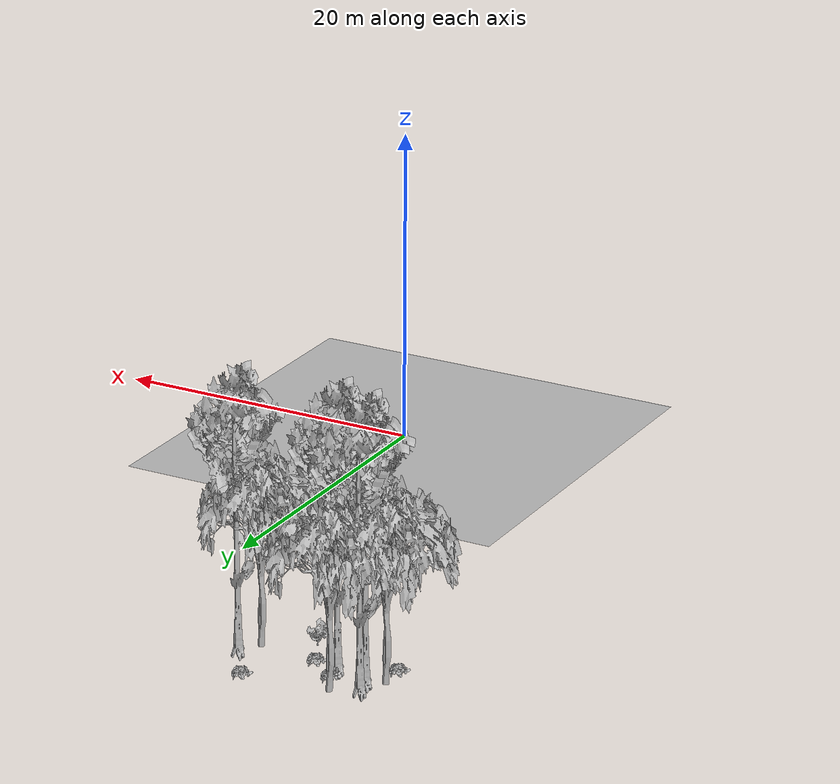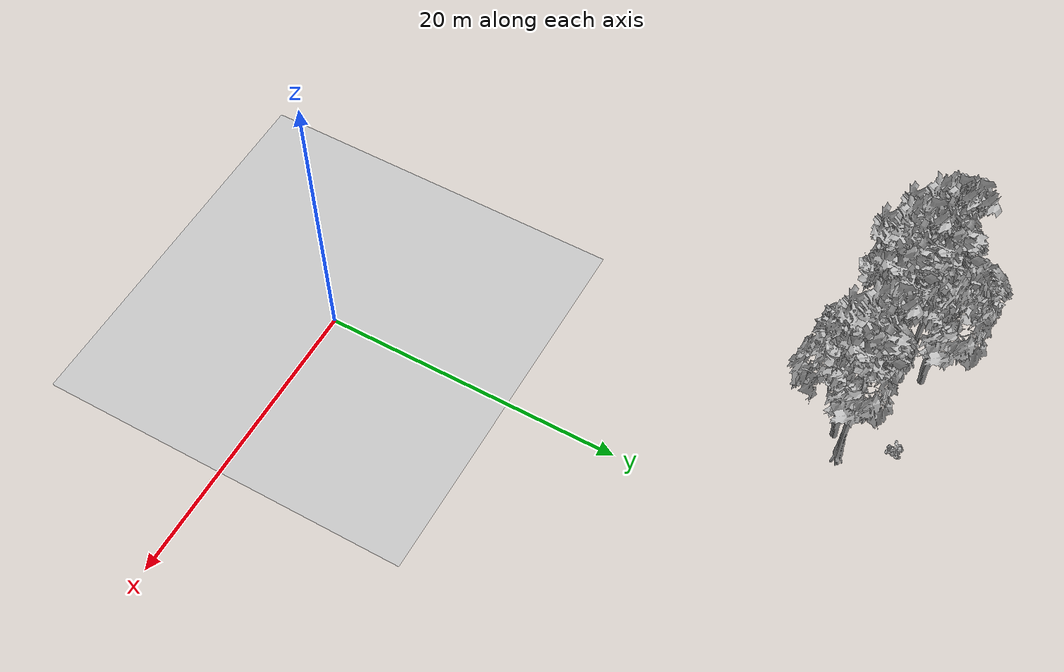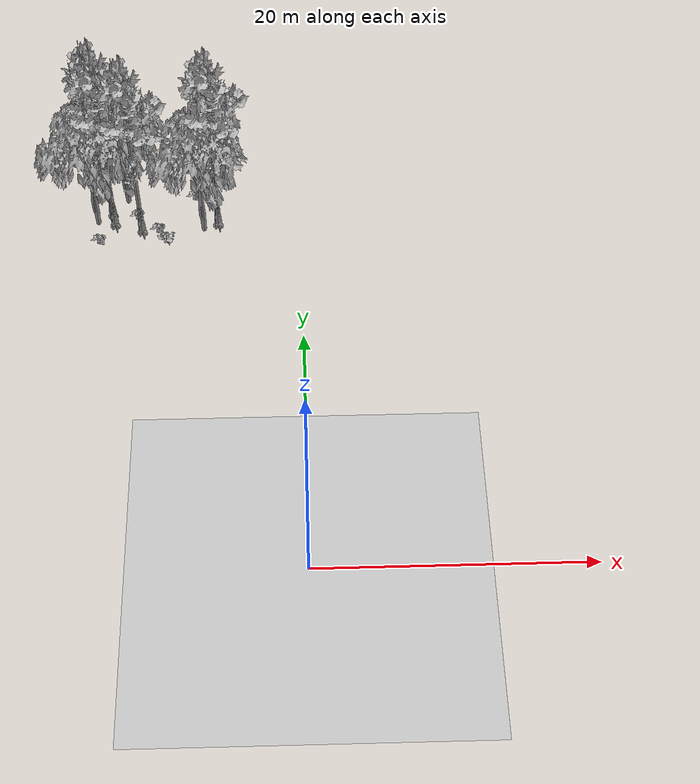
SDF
<sdf version="1.7">
 <world name="default">
  <model name="ground_plane">
   <static>1</static>
   <link name="link">
    <collision name="collision">
     <pose>-50 0 0 0 -0 0</pose>
     <geometry><plane><normal>0 0 1</normal><size>80 80</size></plane></geometry>
     <surface><contact><ode><min_depth>0.01</min_depth><max_vel>0</max_vel></ode></contact></surface>
    </collision>
    <visual name="grass">
     <cast_shadows>0</cast_shadows>
     <geometry>
      <mesh>
       <scale>0.46714285714285714 0.46714285714285714 0.1</scale>
       <uri>file://grass_plane/meshes/grass_plane.dae</uri>
      </mesh>
     </geometry>
    </visual>
   </link>
  </model>
  <model name="Tree 146">
   <static>1</static>
   <pose>-14.961076138893592 31.85427022478686 0 1.57079 -0 0</pose>
   <link name="link">
    <collision name="collision">
     <geometry><mesh><scale>3.5 5 3.5</scale><uri>model://tree_9/meshes/tree_9.obj</uri></mesh></geometry>
    </collision>
    <visual name="visual">
     <geometry><mesh><scale>3.5 5 3.5</scale><uri>model://tree_9/meshes/tree_9.obj</uri></mesh></geometry>
    </visual>
   </link>
  </model>
  <model name="Tree 205">
   <static>1</static>
   <pose>-6.693130029296043 31.7092680126446 0 1.57079 -0 0</pose>
   <link name="link">
    <collision name="collision">
     <geometry><mesh><scale>3.5 5 3.5</scale><uri>model://tree_9/meshes/tree_9.obj</uri></mesh></geometry>
    </collision>
    <visual name="visual">
     <geometry><mesh><scale>3.5 5 3.5</scale><uri>model://tree_9/meshes/tree_9.obj</uri></mesh></geometry>
    </visual>
   </link>
  </model>
  <model name="Tree 332">
   <static>1</static>
   <pose>-14.061984903483644 34.10177113755012 0 1.57079 -0 0</pose>
   <link name="link">
    <collision name="collision">
     <geometry><mesh><scale>3.5 5 3.5</scale><uri>model://tree_2/meshes/tree_2.obj</uri></mesh></geometry>
    </collision>
    <visual name="visual">
     <geometry><mesh><scale>3.5 5 3.5</scale><uri>model://tree_2/meshes/tree_2.obj</uri></mesh></geometry>
    </visual>
   </link>
  </model>
  <model name="Tree 368">
   <static>1</static>
   <pose>-16.33912244209458 31.804862480765877 0 1.57079 -0 0</pose>
   <link name="link">
    <collision name="collision">
     <geometry><mesh><scale>3.5 5 3.5</scale><uri>model://tree_2/meshes/tree_2.obj</uri></mesh></geometry>
    </collision>
    <visual name="visual">
     <geometry><mesh><scale>3.5 5 3.5</scale><uri>model://tree_2/meshes/tree_2.obj</uri></mesh></geometry>
    </visual>
   </link>
  </model>
  <model name="Tree 448">
   <static>1</static>
   <pose>-7.870499715416056 30.929971764070316 0 1.57079 -0 0</pose>
   <link name="link">
    <collision name="collision">
     <geometry><mesh><scale>3.5 5 3.5</scale><uri>model://tree_2/meshes/tree_2.obj</uri></mesh></geometry>
    </collision>
    <visual name="visual">
     <geometry><mesh><scale>3.5 5 3.5</scale><uri>model://tree_2/meshes/tree_2.obj</uri></mesh></geometry>
    </visual>
   </link>
  </model>
  <model name="Tree 454">
   <static>1</static>
   <pose>-12.755983272720538 31.090131524891007 0 1.57079 -0 0</pose>
   <link name="link">
    <collision name="collision">
     <geometry><mesh><scale>3.5 5 3.5</scale><uri>model://tree_9/meshes/tree_9.obj</uri></mesh></geometry>
    </collision>
    <visual name="visual">
     <geometry><mesh><scale>3.5 5 3.5</scale><uri>model://tree_9/meshes/tree_9.obj</uri></mesh></geometry>
    </visual>
   </link>
  </model>
  <model name="Tree 466">
   <static>1</static>
   <pose>-15.190442848679577 32.90170732839873 0 1.57079 -0 0</pose>
   <link name="link">
    <collision name="collision">
     <geometry><mesh><scale>3.5 5 3.5</scale><uri>model://tree_9/meshes/tree_9.obj</uri></mesh></geometry>
    </collision>
    <visual name="visual">
     <geometry><mesh><scale>3.5 5 3.5</scale><uri>model://tree_9/meshes/tree_9.obj</uri></mesh></geometry>
    </visual>
   </link>
  </model>
  <model name="Bush 6">
   <static>1</static>
   <pose>-13.183257065494967 32.5680396946736 0 1.57079 -0 0</pose>
   <link name="link">
    <collision name="collision">
     <geometry><mesh><scale>2 2 2</scale><uri>model://bush_2/meshes/bush_2.obj</uri></mesh></geometry>
     <surface><contact><collide_without_contact>false</collide_without_contact></contact></surface>
    </collision>
    <visual name="visual">
     <geometry><mesh><scale>2 2 2</scale><uri>model://bush_2/meshes/bush_2.obj</uri></mesh></geometry>
    </visual>
   </link>
  </model>
  <model name="Bush 64">
   <static>1</static>
   <pose>-8.657688561409628 34.58454920156099 0 1.57079 -0 0</pose>
   <link name="link">
    <collision name="collision">
     <geometry><mesh><scale>2 2 2</scale><uri>model://bush_2/meshes/bush_2.obj</uri></mesh></geometry>
     <surface><contact><collide_without_contact>false</collide_without_contact></contact></surface>
    </collision>
    <visual name="visual">
     <geometry><mesh><scale>2 2 2</scale><uri>model://bush_2/meshes/bush_2.obj</uri></mesh></geometry>
    </visual>
   </link>
  </model>
  <model name="Bush 119">
   <static>1</static>
   <pose>-16.131569324287923 30.060481044743412 0 1.57079 -0 0</pose>
   <link name="link">
    <collision name="collision">
     <geometry><mesh><scale>2 2 2</scale><uri>model://bush_2/meshes/bush_2.obj</uri></mesh></geometry>
     <surface><contact><collide_without_contact>false</collide_without_contact></contact></surface>
    </collision>
    <visual name="visual">
     <geometry><mesh><scale>2 2 2</scale><uri>model://bush_2/meshes/bush_2.obj</uri></mesh></geometry>
    </visual>
   </link>
  </model>
  <model name="Bush 299">
   <static>1</static>
   <pose>-11.470141293054038 31.111784156845147 0 1.57079 -0 0</pose>
   <link name="link">
    <collision name="collision">
     <geometry><mesh><scale>2 2 2</scale><uri>model://bush_2/meshes/bush_2.obj</uri></mesh></geometry>
     <surface><contact><collide_without_contact>false</collide_without_contact></contact></surface>
    </collision>
    <visual name="visual">
     <geometry><mesh><scale>2 2 2</scale><uri>model://bush_2/meshes/bush_2.obj</uri></mesh></geometry>
    </visual>
   </link>
  </model>
  <model name="Bush 475">
   <static>1</static>
   <pose>-10.540387680801793 29.40445401230457 0 1.57079 -0 0</pose>
   <link name="link">
    <collision name="collision">
     <geometry><mesh><scale>2 2 2</scale><uri>model://bush_0/meshes/bush_0.obj</uri></mesh></geometry>
     <surface><contact><collide_without_contact>false</collide_without_contact></contact></surface>
    </collision>
    <visual name="visual">
     <geometry><mesh><scale>2 2 2</scale><uri>model://bush_0/meshes/bush_0.obj</uri></mesh></geometry>
    </visual>
   </link>
  </model>
 </world>
</sdf>
